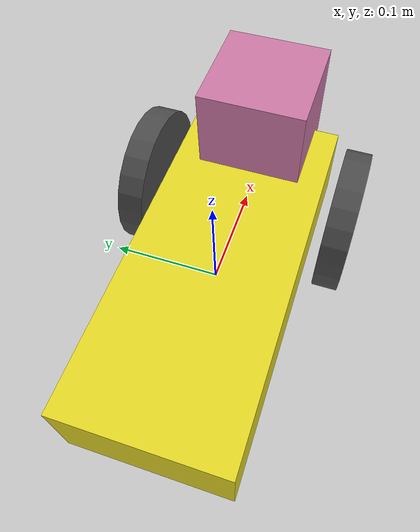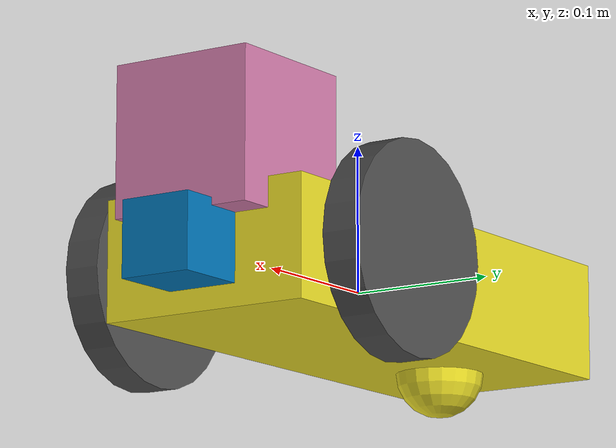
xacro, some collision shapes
<?xml version='1.0'?>

<robot name="my_robot" xmlns:xacro="http://www.ros.org/wiki/xacro">

	<xacro:include filename="$(find my_robot)/urdf/my_robot.gazebo"/>

 	<link name="robot_footprint"></link>

   	<joint name="robot_footprint_joint" type="fixed">
    		<origin xyz="0 0 0" rpy="0 0 0" />
    		<parent link="robot_footprint"/>
    		<child link="chassis"/>
  	</joint>

  	<link name='chassis'>
    		<pose>0 0 0.1 0 0 0</pose>

		<inertial>
      			<mass value="3.0"/>
      			<origin xyz="0.0 0 0" rpy=" 0 0 0"/>
     			<inertia
          			ixx="0.1" ixy="0" ixz="0"
          			iyy="0.1" iyz="0"
          			izz="0.1"/>
    		</inertial>

		<collision name='collision'>
      			<origin xyz="0 0 0" rpy=" 0 0 0"/>
      			<geometry>
        			<box size="0.35 0.15 0.08"/>
      			</geometry>
    		</collision>

		<visual name='chassis_visual'>
      			<origin xyz="0 0 0" rpy=" 0 0 0"/>
      			<geometry>
        			<box size="0.35 0.15 0.08"/>
      			</geometry>
    		</visual>

		<collision name='back_caster_collision'>
      			<origin xyz="-0.1 0 -0.04" rpy=" 0 0 0"/>
      			<geometry>
        			<sphere radius="0.03"/>
      			</geometry>
    		</collision>

		<visual name='back_caster_visual'>
      			<origin xyz="-0.1 0 -0.04" rpy=" 0 0 0"/>
      			<geometry>
        			<sphere radius="0.03"/>
      			</geometry>
    		</visual>
  	</link>

  	<link name='left_wheel'>
    		<inertial>
      			<mass value="0.5"/>
      			<origin xyz="0.0 0 0" rpy="0 1.5707 1.5707"/>
      			<inertia
          			ixx="0.1" ixy="0" ixz="0"
          			iyy="0.1" iyz="0"
          			izz="0.1"/>
    		</inertial>

		<collision name='left_wheel_collision'>
      			<origin xyz="0 0 0" rpy="0 1.5707 1.5707"/>
      			<geometry>
        			<cylinder length="0.020" radius="0.07"/>
      			</geometry>
    		</collision>

		<visual name='left_wheel_visual'>
      			<origin xyz="0 0 0" rpy="0 1.5707 1.5707"/>
      			<geometry>
        			<cylinder length="0.025" radius="0.07"/>
      			</geometry>
    		</visual>
  	</link>

	<joint name="left_wheel_hinge" type="continuous">
    		<origin xyz="0.1 0.1 0" rpy="0 0 0" />
    		<parent link="chassis"/>
    		<child link="left_wheel" />
    		<axis xyz="0 1 0" rpy="0 0 0"/>
    		<limit effort="10000" velocity="1000"/>
    		<dynamics damping="1.0" friction="1.0"/>
  	</joint>

  	<link name='right_wheel'>
    		<inertial>
      			<mass value="0.5"/>
      			<origin xyz="0 0 0" rpy="0 1.5707 1.5707"/>
      			<inertia
          			ixx="0.1" ixy="0" ixz="0"
          			iyy="0.1" iyz="0"
          			izz="0.1"/>
    		</inertial>

    		<collision name='right_wheel_collision'>
      			<origin xyz="0 0 0" rpy="0 1.5707 1.5707"/>
      			<geometry>
        			<cylinder length="0.020" radius="0.07"/>
      			</geometry>
    		</collision>

		<visual name='right_wheel_visual'>
      			<origin xyz="0 0 0" rpy="0 1.5707 1.5707"/>
      			<geometry>
        			<cylinder length="0.025" radius="0.07"/>
      			</geometry>
    		</visual>
  	</link>

	<joint name="right_wheel_hinge" type="continuous">
    		<origin xyz="0.1 -0.1 0" rpy="0 0 0" />
    		<parent link="chassis"/>
    		<child link="right_wheel" />
    		<axis xyz="0 1 0" rpy="0 0 0"/>
    		<limit effort="10000" velocity="1000"/>
    		<dynamics damping="1.0" friction="1.0"/>
  	</joint>

  	<link name='camera_link'>
    		<inertial>
      			<mass value="0.1"/>
      			<origin xyz="0 0 0" rpy="0 0 0"/>
      			<box_inertia m="0.1" x="0.05" y="0.05" z="0.05"/>
      			<inertia
          			ixx="1e-6" ixy="0" ixz="0"
          			iyy="1e-6" iyz="0"
          			izz="1e-6"/>
    		</inertial>

		<collision name='camera_collision'>
     			<origin xyz="0 0 0" rpy="0 0 0"/>
      			<geometry>
        			<box size=".05 .05 .05"/>
      			</geometry>
    		</collision>

		<visual name='camera_visual'>
      			<origin xyz="0 0 0" rpy="0 0 0"/>
      			<geometry>
        			<box size=".05 .05 .05"/>
      			</geometry>
    		</visual>
  	</link>

	<joint name="camera_joint" type="fixed">
    		<origin xyz="0.2 0 0" rpy="0 0 0" />
    		<parent link="chassis"/>
    		<child link="camera_link" />
    		<axis xyz="0 1 0" rpy="0 0 0"/>
  	</joint>

  	<link name="camera_link_optical"></link>

  	<joint name="camera_optical_joint" type="fixed">
    		<origin xyz="0 0 0" rpy="-1.5707 0 -1.5707" />
    		<parent link="camera_link"/>
    		<child link="camera_link_optical" />
  	</joint>

  	<link name='hokuyo'>
    		<inertial>
      			<mass value="1e-5"/>
      			<origin xyz="0 0 0" rpy="0 0 0"/>
      			<inertia
          			ixx="1e-6" ixy="0" ixz="0"
          			iyy="1e-6" iyz="0"
          			izz="1e-6"/>
    		</inertial>

		<collision name='hokuyo_collision'>
      			<origin xyz="0 0 0" rpy="0 0 0"/>
      			<geometry>
        			<box size=".1 .1 .1"/>
      			</geometry>
    		</collision>

		<visual name='hokuyo_visual'>
      			<origin xyz="0 0 0" rpy="0 0 0"/>
      			<geometry>
        			<mesh filename="package://my_robot/meshes/hokuyo.dae"/>
      			</geometry>
    		</visual>
  	</link>

 	<joint name="hokuyo_joint" type="fixed">
    		<origin xyz="0.15 0 0.07" rpy="0 0 0" />
    		<parent link="chassis"/>
    		<child link="hokuyo" />
    		<axis xyz="0 1 0" rpy="0 0 0"/>
  	</joint>

  	<gazebo reference="left_wheel">
    		<material>Gazebo/DarkGrey</material>
  	</gazebo>
  	<gazebo reference="right_wheel">
    		<material>Gazebo/DarkGrey</material>
  	</gazebo>
  	<gazebo reference="chassis">
    		<material>Gazebo/DarkYellow</material>
  	</gazebo>
  	<gazebo reference="camera">
    		<material>Gazebo/FlatBlack</material>
  	</gazebo>

</robot>
